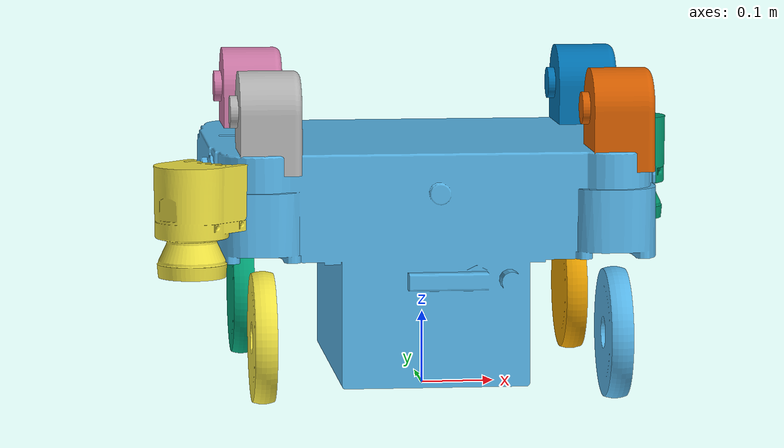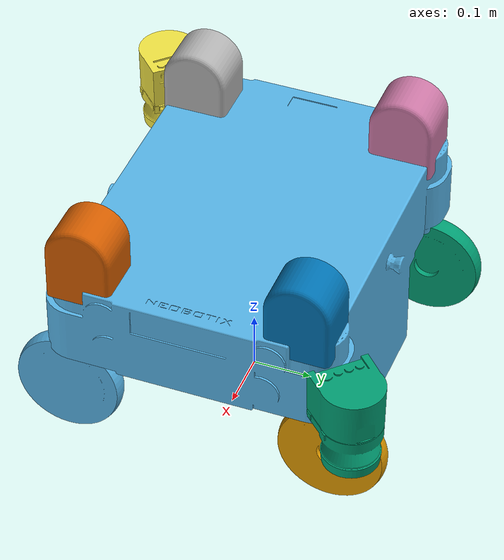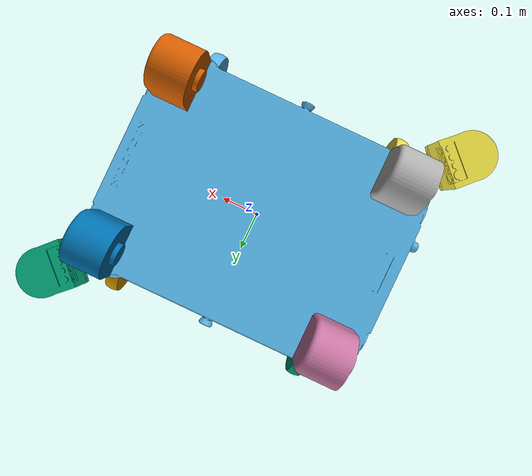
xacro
<?xml version="1.0"?>
<robot xmlns:xacro="http://www.ros.org/wiki/xacro" name="mmo_700">

    <link name="base_footprint"/>

    <link name="base_link">
        <inertial>
            <mass value="200"/>
            <origin xyz="0 0 0"/>
            <inertia ixx="7.8" ixy="0.0" ixz="0" iyy="7.8" iyz="0.0" izz="7.8"/>
        </inertial>
        <visual>
            <origin rpy="0 0 -1.571" xyz="0.0 0.0 0.0"/>
            <geometry>
                <mesh filename="package://steve_simulation/robots/mmo_700/meshes/MPO-700-BODY.dae" scale="0.001 0.001 0.001"/>
            </geometry>
        </visual>
        <collision>
            <origin rpy="0 0 -1.571" xyz="0. 0. 0."/>
            <geometry>
                <mesh filename="package://steve_simulation/robots/mmo_700/meshes/MPO-700-BODY.dae" scale="0.001 0.001 0.001"/>
            </geometry>
        </collision>
    </link>

    <joint name="base_footprint_joint" type="fixed">
        <origin rpy="0 0 0" xyz="0 0 0"/>
        <axis xyz="0 0 -1"/>
        <joint_properties damping="1" friction="1"/>
        <parent link="base_link"/>
        <child link="base_footprint"/>
    </joint>

    <!-- Lidar Sensors -->
    <!-- Lidar 1 - Front Right Corner -->
    <joint name="lidar_1_joint" type="fixed">
        <axis xyz="0 1 0"/>
        <origin rpy="3.14 0 0.79" xyz="0.338 0.288 0.223"/>
        <parent link="base_link"/>
        <child link="lidar_1_link"/>
    </joint>

    <link name="lidar_1_link" type="laser">
        <inertial>
            <mass value="1.2"/>
            <origin rpy="0 0 0" xyz="0 0 0"/>
            <inertia ixx="0.11042056" ixy="0.0" ixz="0.0" iyy="0.11042056" iyz="0.0" izz="0.11042056"/>
        </inertial>
        <visual>
            <origin rpy="-1.57 0 3.14" xyz="0 0 -0.12"/>
            <geometry>
                <mesh filename="package://steve_simulation/components/meshes/SICK-S300.dae" scale="0.001 0.001 0.001"/>
            </geometry>
        </visual>
        <collision>
            <origin rpy="-1.57 0 3.14" xyz="0 0 -0.12"/>
            <geometry>
                <mesh filename="package://steve_simulation/components/meshes/SICK-S300.dae" scale="0.001 0.001 0.001"/>
            </geometry>
        </collision>
    </link>

    <!-- Lidar 2 - Back Left Corner -->
    <joint name="lidar_2_joint" type="fixed">
        <axis xyz="0 1 0"/>
        <origin rpy="3.14 0 3.93" xyz="-0.338 -0.288 0.223"/>
        <parent link="base_link"/>
        <child link="lidar_2_link"/>
    </joint>

    <link name="lidar_2_link" type="laser">
        <inertial>
            <mass value="1.2"/>
            <origin rpy="0 0 0" xyz="0 0 0"/>
            <inertia ixx="0.11042056" ixy="0.0" ixz="0.0" iyy="0.11042056" iyz="0.0" izz="0.11042056"/>
        </inertial>
        <visual>
            <origin rpy="-1.57 0 3.14" xyz="0 0 -0.12"/>
            <geometry>
                <mesh filename="package://steve_simulation/components/meshes/SICK-S300.dae" scale="0.001 0.001 0.001"/>
            </geometry>
        </visual>
        <collision>
            <origin rpy="-1.57 0 3.14" xyz="0 0 -0.12"/>
            <geometry>
                <mesh filename="package://steve_simulation/components/meshes/SICK-S300.dae" scale="0.001 0.001 0.001"/>
            </geometry>
        </collision>
    </link>

    <!-- Import wheel macros from MPO_700 (same platform) -->
    <xacro:include filename="$(find steve_simulation)/robots/mmo_700/urdf/macro/mpo_700_wheel.xacro"/>
    <xacro:include filename="$(find steve_simulation)/robots/mmo_700/urdf/macro/mpo_700_caster.xacro"/>

    <!-- Caster wheels -->
    <xacro:mpo_700_caster_0
        name="mpo_700_caster_front_left"
        parent="base_link"
        >
        <origin rpy="0 0 0" xyz="0.24 0.18 0.22"/>
    </xacro:mpo_700_caster_0>

    <xacro:mpo_700_caster_1
        name="mpo_700_caster_front_right"
        parent="base_link"
        >
        <origin rpy="0 0 0" xyz="0.24 -0.18 0.22"/>
    </xacro:mpo_700_caster_1>

    <xacro:mpo_700_caster_2
        name="mpo_700_caster_back_left"
        parent="base_link"
        >
        <origin rpy="0 0 0" xyz="-0.24 0.18 0.22"/>
    </xacro:mpo_700_caster_2>

    <xacro:mpo_700_caster_3
        name="mpo_700_caster_back_right"
        parent="base_link"
        >
        <origin rpy="0 0 0" xyz="-0.24 -0.18 0.22"/>
    </xacro:mpo_700_caster_3>

    <!-- Wheels -->
    <xacro:mpo_700_wheel
        name="mpo_700_wheel_front_left"
        parent="mpo_700_caster_front_left_link"
        >
        <origin rpy="0 0 0" xyz="0.0 0.045 -0.12"/>
    </xacro:mpo_700_wheel>

    <xacro:mpo_700_wheel
        name="mpo_700_wheel_front_right"
        parent="mpo_700_caster_front_right_link"
        >
        <origin rpy="0 0 3.14" xyz="0.0 -0.045 -0.12"/>
    </xacro:mpo_700_wheel>

    <xacro:mpo_700_wheel
        name="mpo_700_wheel_back_left"
        parent="mpo_700_caster_back_left_link"
        >
        <origin rpy="0 0 0" xyz="0.0 0.045 -0.12"/>
    </xacro:mpo_700_wheel>

    <xacro:mpo_700_wheel
        name="mpo_700_wheel_back_right"
        parent="mpo_700_caster_back_right_link"
        >
        <origin rpy="0 0 3.14" xyz="0.0 -0.045 -0.12"/>
    </xacro:mpo_700_wheel>

</robot>

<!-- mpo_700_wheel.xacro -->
<robot xmlns:xacro="http://www.ros.org/wiki/xacro" name="mpo_700">

  <xacro:macro name="mpo_700_wheel" params="name parent *origin">
   <joint name="${name}_joint" type="fixed">
    <xacro:insert_block name="origin" />
    <limit effort="1000.0" lower="-1e+16" upper="1e+16" velocity="3.5"/>
    <axis xyz="1 0 0" />
    <parent link="${parent}" />
    <child link="${name}_link" />
   </joint>

   <link name="${name}_link" type="wheel">
    <inertial>
      <mass value="5.9" />
      <origin xyz="0 0 0" rpy="0 0 0" />
        <inertia  ixx="0.04" ixy="0.0007" ixz="0.0"
                  iyy="0.02" iyz="0.004"
                  izz="0.05" />
    </inertial>

    <visual>
     <origin xyz="0 0 0" rpy="0 0 0"/>
     <geometry>
        <mesh filename="package://steve_simulation/robots/mmo_700/meshes/MPO-700-WHEEL.dae" scale="0.001 0.001 0.001"/>
     </geometry>
    </visual>

    <collision>
     <origin xyz="0 0 0" rpy="0 0 0" />
     <geometry>
        <mesh filename="package://steve_simulation/robots/mmo_700/meshes/MPO-700-WHEEL.dae" scale="0.001 0.001 0.001"/>
     </geometry>
    </collision>
   </link>

     <gazebo reference="${name}_link">
      <mu1 value="0.05"/>
      <mu2 value="0.05"/>
      <kp value="100000.0" />
      <kd value="10.0" />
      </gazebo>
  </xacro:macro>

</robot>

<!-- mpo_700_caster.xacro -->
<robot xmlns:xacro="http://www.ros.org/wiki/xacro" name="mpo_700">

  <xacro:macro name="mpo_700_caster_0" params="name parent *origin">
   <joint name="${name}_joint" type="fixed">
    <xacro:insert_block name="origin" />
    <axis xyz="0 0 -1" />
    <joint_properties damping="1" friction="1" />
    <parent link="${parent}" />
    <child link="${name}_link" />
   </joint>

   <link name="${name}_link">
    <inertial>
      <mass value="9" />
      <origin xyz="0 0 0" rpy="0 0 0" />
      <inertia ixx="0.00044332" ixy="0" ixz="0" iyy="0.00044332" iyz="0" izz="0.00072" />
    </inertial>

    <visual>
     <origin xyz="0 0 0.10" rpy="0 0 0"/>
     <geometry>
        <mesh filename="package://steve_simulation/robots/mmo_700/meshes/MPO-700-HEAD.dae" scale="0.001 0.001 0.001"/>
     </geometry>
    </visual>

    <collision>
     <origin xyz="0 0 0.10" rpy="0 0 0" />
     <geometry>
        <mesh filename="package://steve_simulation/robots/mmo_700/meshes/MPO-700-HEAD.dae" scale="0.001 0.001 0.001"/>
     </geometry>
    </collision>
   </link>

  </xacro:macro>

  <xacro:macro name="mpo_700_caster_1" params="name parent *origin">
   <joint name="${name}_joint" type="fixed">
    <xacro:insert_block name="origin" />
    <axis xyz="0 0 -1" />
    <joint_properties damping="1" friction="1" />
    <parent link="${parent}" />
    <child link="${name}_link" />
   </joint>

   <link name="${name}_link">
    <inertial>
      <mass value="9" />
      <origin xyz="0 0 0." rpy="0 0 0" />
      <inertia ixx="0.00044332" ixy="0" ixz="0" iyy="0.00044332" iyz="0" izz="0.00072" />
    </inertial>

    <visual>
     <origin xyz="0 0 0.10" rpy="0 0 0"/>
     <geometry>
        <mesh filename="package://steve_simulation/robots/mmo_700/meshes/MPO-700-HEAD.dae" scale="0.001 0.001 0.001"/>
     </geometry>
    </visual>

    <collision>
     <origin xyz="0 0 0.10" rpy="0 0 0" />
     <geometry>
        <mesh filename="package://steve_simulation/robots/mmo_700/meshes/MPO-700-HEAD.dae" scale="0.001 0.001 0.001"/>
     </geometry>
    </collision>
   </link>

  </xacro:macro>

  <xacro:macro name="mpo_700_caster_2" params="name parent *origin">
   <joint name="${name}_joint" type="fixed">
    <xacro:insert_block name="origin" />
    <axis xyz="0 0 -1" />
    <joint_properties damping="1" friction="1" />
    <parent link="${parent}" />
    <child link="${name}_link" />
   </joint>

   <link name="${name}_link">
    <inertial>
      <mass value="9" />
      <origin xyz="0 0 0." rpy="0 0 0" />
      <inertia ixx="0.00044332" ixy="0" ixz="0" iyy="0.00044332" iyz="0" izz="0.00072" />
    </inertial>

    <visual>
     <origin xyz="0 0 0.10" rpy="0 0 0"/>
     <geometry>
        <mesh filename="package://steve_simulation/robots/mmo_700/meshes/MPO-700-HEAD.dae" scale="0.001 0.001 0.001"/>
     </geometry>
    </visual>

    <collision>
     <origin xyz="0 0 0.10" rpy="0 0 0" />
     <geometry>
        <mesh filename="package://steve_simulation/robots/mmo_700/meshes/MPO-700-HEAD.dae" scale="0.001 0.001 0.001"/>
     </geometry>
    </collision>
   </link>

  </xacro:macro>

  <xacro:macro name="mpo_700_caster_3" params="name parent *origin">
   <joint name="${name}_joint" type="fixed">
    <xacro:insert_block name="origin" />
    <axis xyz="0 0 -1" />
    <joint_properties damping="1" friction="1" />
    <parent link="${parent}" />
    <child link="${name}_link" />
   </joint>

   <link name="${name}_link">
    <inertial>
      <mass value="9" />
      <origin xyz="0 0 0" rpy="0 0 0" />
      <inertia ixx="0.00044332" ixy="0" ixz="0" iyy="0.00044332" iyz="0" izz="0.00072" />
    </inertial>

    <visual>
     <origin xyz="0 0 0.10" rpy="0 0 0"/>
     <geometry>
        <mesh filename="package://steve_simulation/robots/mmo_700/meshes/MPO-700-HEAD.dae" scale="0.001 0.001 0.001"/>
     </geometry>
    </visual>

    <collision>
     <origin xyz="0 0 0.10" rpy="0 0 0" />
     <geometry>
        <mesh filename="package://steve_simulation/robots/mmo_700/meshes/MPO-700-HEAD.dae" scale="0.001 0.001 0.001"/>
     </geometry>
    </collision>
   </link>

  </xacro:macro>
</robot>
